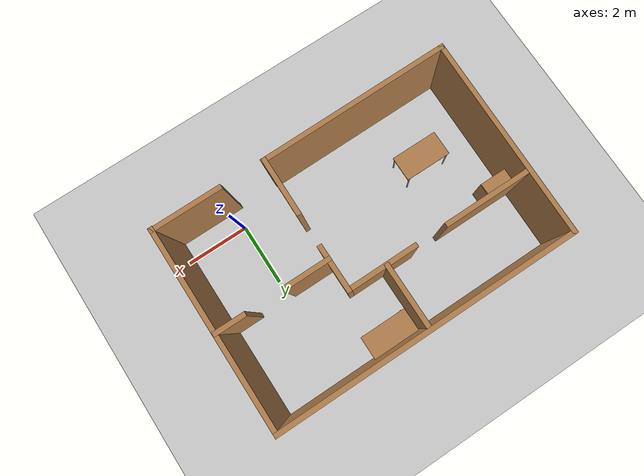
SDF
<sdf version="1.6">
 <world name="default">
  <light name="sun" type="directional">
   <pose>0 0 10 0 -0 0</pose>
   <diffuse>0.8 0.8 0.8 1</diffuse>
   <specular>0.2 0.2 0.2 1</specular>
   <attenuation>
    <range>1000</range>
    <constant>0.9</constant>
    <linear>0.01</linear>
    <quadratic>0.001</quadratic>
   </attenuation>
   <direction>-0.5 0.1 -0.9</direction>
  </light>
  <model name="ground_plane">
   <static>1</static>
   <link name="link">
    <collision name="collision">
     <geometry><plane><normal>0 0 1</normal><size>100 100</size></plane></geometry>
     <surface><friction><ode><mu>100</mu><mu2>50</mu2></ode></friction></surface>
    </collision>
    <visual name="visual">
     <cast_shadows>0</cast_shadows>
     <geometry><plane><normal>0 0 1</normal><size>100 100</size></plane></geometry>
     <material>
      <script><uri>file://media/materials/scripts/gazebo.material</uri><name>Gazebo/Grey</name></script>
     </material>
    </visual>
   </link>
  </model>
  <gravity>0 0 -9.8</gravity>
  <magnetic_field>6e-06 2.3e-05 -4.2e-05</magnetic_field>
  <atmosphere type="adiabatic"/>
  <physics name="default_physics" default="0" type="ode">
   <max_step_size>0.001</max_step_size>
   <real_time_factor>1</real_time_factor>
   <real_time_update_rate>1000</real_time_update_rate>
  </physics>
  <scene><ambient>0.4 0.4 0.4 1</ambient><background>0.7 0.7 0.7 1</background><shadows>1</shadows></scene>
  <audio><device>default</device></audio>
  <spherical_coordinates>
   <surface_model>EARTH_WGS84</surface_model>
   <latitude_deg>0</latitude_deg>
   <longitude_deg>0</longitude_deg>
   <elevation>0</elevation>
   <heading_deg>0</heading_deg>
  </spherical_coordinates>
  <model name="stage">
   <pose>-2.81851 2.44711 0 0 -0 0</pose>
   <link name="Wall_11">
    <collision name="Wall_11_Collision">
     <geometry><box><size>1.5 0.15 2.5</size></box></geometry>
     <pose>0 0 1.25 0 -0 0</pose>
    </collision>
    <visual name="Wall_11_Visual">
     <pose>0 0 1.25 0 -0 0</pose>
     <geometry><box><size>1.5 0.15 2.5</size></box></geometry>
     <material>
      <script><uri>file://media/materials/scripts/gazebo.material</uri><name>Gazebo/Wood</name></script>
      <ambient>1 1 1 1</ambient>
     </material>
     <meta><layer>0</layer></meta>
    </visual>
    <pose>1.20934 0.429664 0 0 -0 1.5708</pose>
   </link>
   <link name="Wall_12">
    <collision name="Wall_12_Collision">
     <geometry><box><size>2.25 0.15 2.5</size></box></geometry>
     <pose>0 0 1.25 0 -0 0</pose>
    </collision>
    <visual name="Wall_12_Visual">
     <pose>0 0 1.25 0 -0 0</pose>
     <geometry><box><size>2.25 0.15 2.5</size></box></geometry>
     <material>
      <script><uri>file://media/materials/scripts/gazebo.material</uri><name>Gazebo/Wood</name></script>
      <ambient>1 1 1 1</ambient>
     </material>
     <meta><layer>0</layer></meta>
    </visual>
    <pose>0.159345 1.10466 0 0 -0 3.14159</pose>
   </link>
   <link name="Wall_16">
    <collision name="Wall_16_Collision">
     <geometry><box><size>2.75 0.15 2.5</size></box></geometry>
     <pose>0 0 1.25 0 -0 0</pose>
    </collision>
    <visual name="Wall_16_Visual">
     <pose>0 0 1.25 0 -0 0</pose>
     <geometry><box><size>2.75 0.15 2.5</size></box></geometry>
     <material>
      <script><uri>file://media/materials/scripts/gazebo.material</uri><name>Gazebo/Wood</name></script>
      <ambient>1 1 1 1</ambient>
     </material>
     <meta><layer>0</layer></meta>
    </visual>
    <pose>-3.2686 1.10227 0 0 -0 3.14159</pose>
   </link>
   <link name="Wall_18">
    <collision name="Wall_18_Collision">
     <geometry><box><size>2 0.15 2.5</size></box></geometry>
     <pose>0 0 1.25 0 -0 0</pose>
    </collision>
    <visual name="Wall_18_Visual">
     <pose>0 0 1.25 0 -0 0</pose>
     <geometry><box><size>2 0.15 2.5</size></box></geometry>
     <material>
      <script><uri>file://media/materials/scripts/gazebo.material</uri><name>Gazebo/Wood</name></script>
      <ambient>1 1 1 1</ambient>
     </material>
     <meta><layer>0</layer></meta>
    </visual>
    <pose>0.00253 2.0675 0 0 -0 1.5708</pose>
   </link>
   <link name="Wall_20">
    <collision name="Wall_20_Collision">
     <geometry><box><size>1.5 0.15 2.5</size></box></geometry>
     <pose>0 0 1.25 0 -0 0</pose>
    </collision>
    <visual name="Wall_20_Visual">
     <pose>0 0 1.25 0 -0 0</pose>
     <geometry><box><size>1.5 0.15 2.5</size></box></geometry>
     <material>
      <script><uri>file://media/materials/scripts/gazebo.material</uri><name>Gazebo/Wood</name></script>
      <ambient>1 1 1 1</ambient>
     </material>
     <meta><layer>0</layer></meta>
    </visual>
    <pose>1.88434 0.136822 0 0 -0 0</pose>
   </link>
   <link name="Wall_22">
    <collision name="Wall_22_Collision">
     <geometry><box><size>1 0.15 2.5</size></box></geometry>
     <pose>0 0 1.25 0 -0 0</pose>
    </collision>
    <visual name="Wall_22_Visual">
     <pose>0 0 1.25 0 -0 0</pose>
     <geometry><box><size>1 0.15 2.5</size></box></geometry>
     <material>
      <script><uri>file://media/materials/scripts/gazebo.material</uri><name>Gazebo/Wood</name></script>
      <ambient>1 1 1 1</ambient>
     </material>
     <meta><layer>0</layer></meta>
    </visual>
    <pose>4.26922 0.136822 0 0 -0 0</pose>
   </link>
   <link name="Wall_3">
    <collision name="Wall_3_Collision">
     <geometry><box><size>1.88227 0.15 2.5</size></box></geometry>
     <pose>0 0 1.25 0 -0 0</pose>
    </collision>
    <visual name="Wall_3_Visual">
     <pose>0 0 1.25 0 -0 0</pose>
     <geometry><box><size>1.88227 0.15 2.5</size></box></geometry>
     <material>
      <script><uri>file://media/materials/scripts/gazebo.material</uri><name>Gazebo/Wood</name></script>
      <ambient>1 1 1 1</ambient>
     </material>
     <meta><layer>0</layer></meta>
    </visual>
    <pose>1.19547 -2.22989 0 0 -0 1.55919</pose>
   </link>
   <link name="Wall_5">
    <collision name="Wall_5_Collision">
     <geometry><box><size>6.04037 0.15 2.5</size></box></geometry>
     <pose>0 0 1.25 0 -0 0</pose>
    </collision>
    <visual name="Wall_5_Visual">
     <pose>0 0 1.25 0 -0 0</pose>
     <geometry><box><size>6.04037 0.15 2.5</size></box></geometry>
     <material>
      <script><uri>file://media/materials/scripts/gazebo.material</uri><name>Gazebo/Wood</name></script>
      <ambient>1 1 1 1</ambient>
     </material>
     <meta><layer>0</layer></meta>
    </visual>
    <pose>-1.73958 -3.11608 0 0 -0 -3.13476</pose>
   </link>
   <link name="Wall_6">
    <collision name="Wall_6_Collision">
     <geometry><box><size>6.42242 0.15 2.5</size></box></geometry>
     <pose>0 0 1.25 0 -0 0</pose>
    </collision>
    <visual name="Wall_6_Visual">
     <pose>0 0 1.25 0 -0 0</pose>
     <geometry><box><size>6.42242 0.15 2.5</size></box></geometry>
     <material>
      <script><uri>file://media/materials/scripts/gazebo.material</uri><name>Gazebo/Wood</name></script>
      <ambient>1 1 1 1</ambient>
     </material>
     <meta><layer>0</layer></meta>
    </visual>
    <pose>-4.67464 0 0 0 -0 1.56118</pose>
   </link>
   <link name="Wall_7">
    <collision name="Wall_7_Collision">
     <geometry><box><size>9.5 0.15 2.5</size></box></geometry>
     <pose>0 0 1.25 0 -0 0</pose>
    </collision>
    <visual name="Wall_7_Visual">
     <pose>0 0 1.25 0 -0 0</pose>
     <geometry><box><size>9.5 0.15 2.5</size></box></geometry>
     <material>
      <script><uri>file://media/materials/scripts/gazebo.material</uri><name>Gazebo/Wood</name></script>
      <ambient>1 1 1 1</ambient>
     </material>
     <meta><layer>0</layer></meta>
    </visual>
    <pose>0.030529 3.13619 0 0 -0 0</pose>
   </link>
   <link name="Wall_8">
    <collision name="Wall_8_Collision">
     <geometry><box><size>6.42239 0.15 2.5</size></box></geometry>
     <pose>0 0 1.25 0 -0 0</pose>
    </collision>
    <visual name="Wall_8_Visual">
     <pose>0 0 1.25 0 -0 0</pose>
     <geometry><box><size>6.42239 0.15 2.5</size></box></geometry>
     <material>
      <script><uri>file://media/materials/scripts/gazebo.material</uri><name>Gazebo/Wood</name></script>
      <ambient>1 1 1 1</ambient>
     </material>
     <meta><layer>0</layer></meta>
    </visual>
    <pose>4.70553 0 0 0 -0 -1.5708</pose>
   </link>
   <link name="Wall_9">
    <collision name="Wall_9_Collision">
     <geometry><box><size>2.25 0.15 2.5</size></box></geometry>
     <pose>0 0 1.25 0 -0 0</pose>
    </collision>
    <visual name="Wall_9_Visual">
     <pose>0 0 1.25 0 -0 0</pose>
     <geometry><box><size>2.25 0.15 2.5</size></box></geometry>
     <material>
      <script><uri>file://media/materials/scripts/gazebo.material</uri><name>Gazebo/Wood</name></script>
      <ambient>1 1 1 1</ambient>
     </material>
     <meta><layer>0</layer></meta>
    </visual>
    <pose>3.65553 -3.11608 0 0 -0 3.14159</pose>
   </link>
   <static>1</static>
  </model>
  <model name="bookshelf">
   <static>1</static>
   <link name="link">
    <inertial><mass>1</mass></inertial>
    <collision name="back">
     <pose>0 0.005 0.6 0 -0 0</pose>
     <geometry><box><size>0.9 0.01 1.2</size></box></geometry>
    </collision>
    <visual name="visual1">
     <pose>0 0.005 0.6 0 -0 0</pose>
     <geometry><box><size>0.9 0.01 1.2</size></box></geometry>
     <material>
      <script><uri>file://media/materials/scripts/gazebo.material</uri><name>Gazebo/Wood</name></script>
     </material>
    </visual>
    <collision name="left_side">
     <pose>0.45 -0.195 0.6 0 -0 0</pose>
     <geometry><box><size>0.02 0.4 1.2</size></box></geometry>
    </collision>
    <visual name="visual2">
     <pose>0.45 -0.195 0.6 0 -0 0</pose>
     <geometry><box><size>0.02 0.4 1.2</size></box></geometry>
     <material>
      <script><uri>file://media/materials/scripts/gazebo.material</uri><name>Gazebo/Wood</name></script>
     </material>
    </visual>
    <collision name="right_side">
     <pose>-0.45 -0.195 0.6 0 -0 0</pose>
     <geometry><box><size>0.02 0.4 1.2</size></box></geometry>
    </collision>
    <visual name="visual3">
     <pose>-0.45 -0.195 0.6 0 -0 0</pose>
     <geometry><box><size>0.02 0.4 1.2</size></box></geometry>
     <material>
      <script><uri>file://media/materials/scripts/gazebo.material</uri><name>Gazebo/Wood</name></script>
     </material>
    </visual>
    <collision name="bottom">
     <pose>0 -0.195 0.03 0 -0 0</pose>
     <geometry><box><size>0.88 0.4 0.06</size></box></geometry>
    </collision>
    <visual name="visual4">
     <pose>0 -0.195 0.03 0 -0 0</pose>
     <geometry><box><size>0.88 0.4 0.06</size></box></geometry>
     <material>
      <script><uri>file://media/materials/scripts/gazebo.material</uri><name>Gazebo/Wood</name></script>
     </material>
    </visual>
    <collision name="top">
     <pose>0 -0.195 1.19 0 -0 0</pose>
     <geometry><box><size>0.88 0.4 0.02</size></box></geometry>
    </collision>
    <visual name="visual5">
     <pose>0 -0.195 1.19 0 -0 0</pose>
     <geometry><box><size>0.88 0.4 0.02</size></box></geometry>
     <material>
      <script><uri>file://media/materials/scripts/gazebo.material</uri><name>Gazebo/Wood</name></script>
     </material>
    </visual>
    <collision name="low_shelf">
     <pose>0 -0.195 0.43 0 -0 0</pose>
     <geometry><box><size>0.88 0.4 0.02</size></box></geometry>
    </collision>
    <visual name="visual6">
     <pose>0 -0.195 0.43 0 -0 0</pose>
     <geometry><box><size>0.88 0.4 0.02</size></box></geometry>
     <material>
      <script><uri>file://media/materials/scripts/gazebo.material</uri><name>Gazebo/Wood</name></script>
     </material>
    </visual>
    <collision name="high_shelf">
     <pose>0 -0.195 0.8 0 -0 0</pose>
     <geometry><box><size>0.88 0.4 0.02</size></box></geometry>
    </collision>
    <visual name="visual7">
     <pose>0 -0.195 0.8 0 -0 0</pose>
     <geometry><box><size>0.88 0.4 0.02</size></box></geometry>
     <material>
      <script><uri>file://media/materials/scripts/gazebo.material</uri><name>Gazebo/Wood</name></script>
     </material>
    </visual>
   </link>
   <pose>-7 3.4291 0 0 -0 0</pose>
  </model>
  <model name="table">
   <static>1</static>
   <link name="link">
    <collision name="surface">
     <pose>0 0 1 0 -0 0</pose>
     <geometry><box><size>1.5 0.8 0.03</size></box></geometry>
     <surface><friction><ode><mu>0.6</mu><mu2>0.6</mu2></ode></friction></surface>
    </collision>
    <visual name="visual1">
     <pose>0 0 1 0 -0 0</pose>
     <geometry><box><size>1.5 0.8 0.03</size></box></geometry>
     <material>
      <script><uri>file://media/materials/scripts/gazebo.material</uri><name>Gazebo/Wood</name></script>
     </material>
    </visual>
    <collision name="front_left_leg">
     <pose>0.68 0.38 0.5 0 -0 0</pose>
     <geometry><cylinder><radius>0.02</radius><length>1</length></cylinder></geometry>
    </collision>
    <visual name="front_left_leg">
     <pose>0.68 0.38 0.5 0 -0 0</pose>
     <geometry><cylinder><radius>0.02</radius><length>1</length></cylinder></geometry>
     <material>
      <script><uri>file://media/materials/scripts/gazebo.material</uri><name>Gazebo/Grey</name></script>
     </material>
    </visual>
    <collision name="front_right_leg">
     <pose>0.68 -0.38 0.5 0 -0 0</pose>
     <geometry><cylinder><radius>0.02</radius><length>1</length></cylinder></geometry>
    </collision>
    <visual name="front_right_leg">
     <pose>0.68 -0.38 0.5 0 -0 0</pose>
     <geometry><cylinder><radius>0.02</radius><length>1</length></cylinder></geometry>
     <material>
      <script><uri>file://media/materials/scripts/gazebo.material</uri><name>Gazebo/Grey</name></script>
     </material>
    </visual>
    <collision name="back_right_leg">
     <pose>-0.68 -0.38 0.5 0 -0 0</pose>
     <geometry><cylinder><radius>0.02</radius><length>1</length></cylinder></geometry>
    </collision>
    <visual name="back_right_leg">
     <pose>-0.68 -0.38 0.5 0 -0 0</pose>
     <geometry><cylinder><radius>0.02</radius><length>1</length></cylinder></geometry>
     <material>
      <script><uri>file://media/materials/scripts/gazebo.material</uri><name>Gazebo/Grey</name></script>
     </material>
    </visual>
    <collision name="back_left_leg">
     <pose>-0.68 0.38 0.5 0 -0 0</pose>
     <geometry><cylinder><radius>0.02</radius><length>1</length></cylinder></geometry>
    </collision>
    <visual name="back_left_leg">
     <pose>-0.68 0.38 0.5 0 -0 0</pose>
     <geometry><cylinder><radius>0.02</radius><length>1</length></cylinder></geometry>
     <material>
      <script><uri>file://media/materials/scripts/gazebo.material</uri><name>Gazebo/Grey</name></script>
     </material>
    </visual>
   </link>
   <pose>-5.63666 1.30876 0 0 -0 0</pose>
  </model>
  <model name="table_0">
   <static>1</static>
   <link name="link">
    <collision name="surface">
     <pose>0 0 1 0 -0 0</pose>
     <geometry><box><size>1.5 0.8 0.03</size></box></geometry>
     <surface><friction><ode><mu>0.6</mu><mu2>0.6</mu2></ode></friction></surface>
    </collision>
    <visual name="visual1">
     <pose>0 0 1 0 -0 0</pose>
     <geometry><box><size>1.5 0.8 0.03</size></box></geometry>
     <material>
      <script><uri>file://media/materials/scripts/gazebo.material</uri><name>Gazebo/Wood</name></script>
     </material>
    </visual>
    <collision name="front_left_leg">
     <pose>0.68 0.38 0.5 0 -0 0</pose>
     <geometry><cylinder><radius>0.02</radius><length>1</length></cylinder></geometry>
    </collision>
    <visual name="front_left_leg">
     <pose>0.68 0.38 0.5 0 -0 0</pose>
     <geometry><cylinder><radius>0.02</radius><length>1</length></cylinder></geometry>
     <material>
      <script><uri>file://media/materials/scripts/gazebo.material</uri><name>Gazebo/Grey</name></script>
     </material>
    </visual>
    <collision name="front_right_leg">
     <pose>0.68 -0.38 0.5 0 -0 0</pose>
     <geometry><cylinder><radius>0.02</radius><length>1</length></cylinder></geometry>
    </collision>
    <visual name="front_right_leg">
     <pose>0.68 -0.38 0.5 0 -0 0</pose>
     <geometry><cylinder><radius>0.02</radius><length>1</length></cylinder></geometry>
     <material>
      <script><uri>file://media/materials/scripts/gazebo.material</uri><name>Gazebo/Grey</name></script>
     </material>
    </visual>
    <collision name="back_right_leg">
     <pose>-0.68 -0.38 0.5 0 -0 0</pose>
     <geometry><cylinder><radius>0.02</radius><length>1</length></cylinder></geometry>
    </collision>
    <visual name="back_right_leg">
     <pose>-0.68 -0.38 0.5 0 -0 0</pose>
     <geometry><cylinder><radius>0.02</radius><length>1</length></cylinder></geometry>
     <material>
      <script><uri>file://media/materials/scripts/gazebo.material</uri><name>Gazebo/Grey</name></script>
     </material>
    </visual>
    <collision name="back_left_leg">
     <pose>-0.68 0.38 0.5 0 -0 0</pose>
     <geometry><cylinder><radius>0.02</radius><length>1</length></cylinder></geometry>
    </collision>
    <visual name="back_left_leg">
     <pose>-0.68 0.38 0.5 0 -0 0</pose>
     <geometry><cylinder><radius>0.02</radius><length>1</length></cylinder></geometry>
     <material>
      <script><uri>file://media/materials/scripts/gazebo.material</uri><name>Gazebo/Grey</name></script>
     </material>
    </visual>
   </link>
   <pose>-1.91611 5.1725 0 0 -0 0</pose>
  </model>
 </world>
</sdf>
